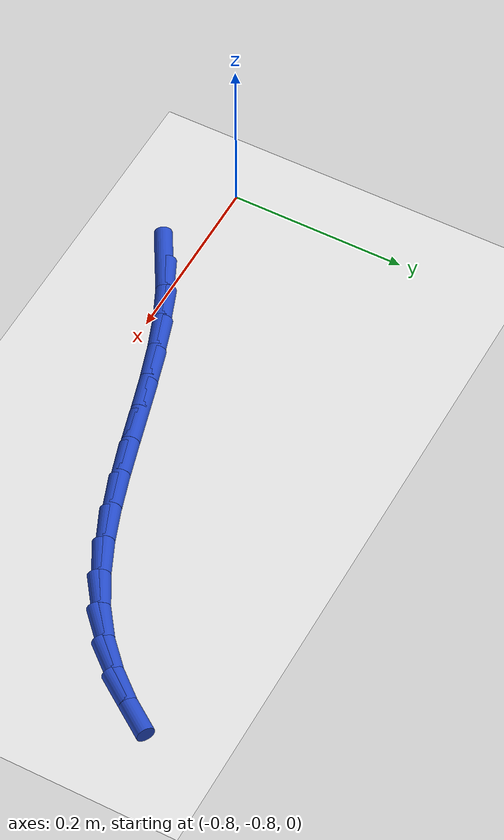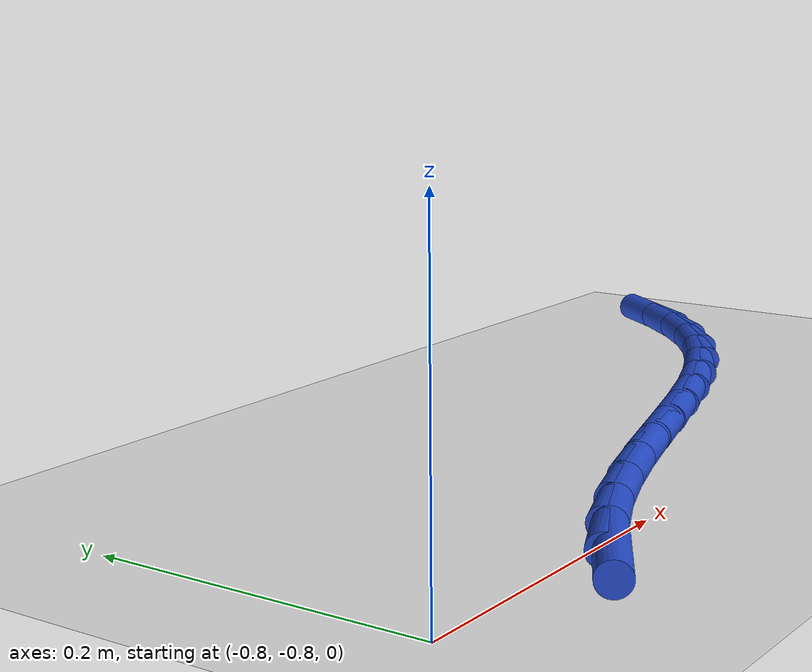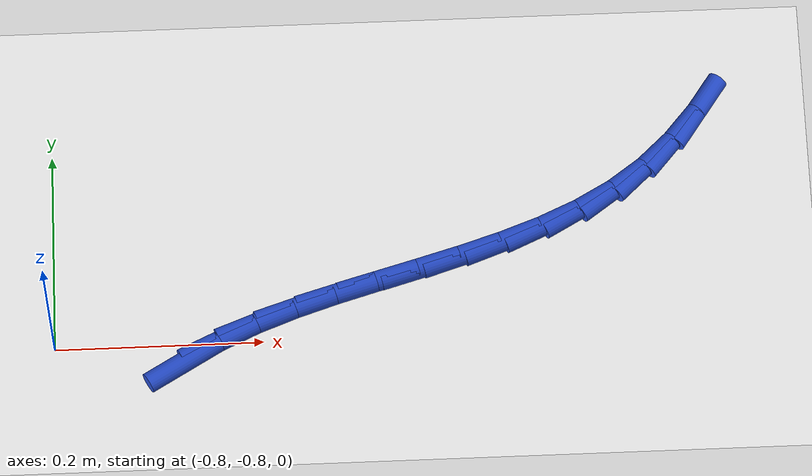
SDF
<sdf version="1.6">
 <world name="default">
  <model name="ground_plane">
   <static>1</static>
   <link name="link">
    <collision name="collision">
     <geometry><plane><normal>0 0 1</normal><size>100 100</size></plane></geometry>
     <surface><friction><ode><mu>100</mu><mu2>50</mu2></ode></friction></surface>
    </collision>
    <visual name="visual">
     <cast_shadows>0</cast_shadows>
     <geometry><plane><normal>0 0 1</normal><size>100 100</size></plane></geometry>
     <material>
      <script><uri>file://media/materials/scripts/gazebo.material</uri><name>Gazebo/WhiteGlow</name></script>
     </material>
    </visual>
   </link>
  </model>
  <model name="line">
   <link name="link_151">
    <pose>-0.6770291355553564 -0.821303218949979 0.01 0 1.57 0.5307839238032793</pose>
    <collision name="collision">
     <geometry><cylinder><radius>0.01</radius><length>0.08</length></cylinder></geometry>
    </collision>
    <visual name="visual">
     <material>
      <script><name>Gazebo/Blue</name><uri>file://media/materials/scripts/gazebo.material</uri></script>
     </material>
     <geometry><cylinder><radius>0.01</radius><length>0.08</length></cylinder></geometry>
    </visual>
   </link>
   <link name="link_152">
    <pose>-0.6430679826048611 -0.80136902264403 0.01 0 1.57 0.4358732601426285</pose>
    <collision name="collision">
     <geometry><cylinder><radius>0.01</radius><length>0.08</length></cylinder></geometry>
    </collision>
    <visual name="visual">
     <material>
      <script><name>Gazebo/Blue</name><uri>file://media/materials/scripts/gazebo.material</uri></script>
     </material>
     <geometry><cylinder><radius>0.01</radius><length>0.08</length></cylinder></geometry>
    </visual>
   </link>
   <link name="link_153">
    <pose>-0.6066791657837312 -0.784420970978457 0.01 0 1.57 0.3645891515962119</pose>
    <collision name="collision">
     <geometry><cylinder><radius>0.01</radius><length>0.08</length></cylinder></geometry>
    </collision>
    <visual name="visual">
     <material>
      <script><name>Gazebo/Blue</name><uri>file://media/materials/scripts/gazebo.material</uri></script>
     </material>
     <geometry><cylinder><radius>0.01</radius><length>0.08</length></cylinder></geometry>
    </visual>
   </link>
   <link name="link_154">
    <pose>-0.5683903887728743 -0.769808009725623 0.01 0 1.57 0.31512306526443534</pose>
    <collision name="collision">
     <geometry><cylinder><radius>0.01</radius><length>0.08</length></cylinder></geometry>
    </collision>
    <visual name="visual">
     <material>
      <script><name>Gazebo/Blue</name><uri>file://media/materials/scripts/gazebo.material</uri></script>
     </material>
     <geometry><cylinder><radius>0.01</radius><length>0.08</length></cylinder></geometry>
    </visual>
   </link>
   <link name="link_155">
    <pose>-0.528729355253201 -0.7568790846578921 0.01 0 1.57 0.28565455775052423</pose>
    <collision name="collision">
     <geometry><cylinder><radius>0.01</radius><length>0.08</length></cylinder></geometry>
    </collision>
    <visual name="visual">
     <material>
      <script><name>Gazebo/Blue</name><uri>file://media/materials/scripts/gazebo.material</uri></script>
     </material>
     <geometry><cylinder><radius>0.01</radius><length>0.08</length></cylinder></geometry>
    </visual>
   </link>
   <link name="link_156">
    <pose>-0.4882237689056193 -0.744983141547628 0.01 0 1.57 0.27490973058277157</pose>
    <collision name="collision">
     <geometry><cylinder><radius>0.01</radius><length>0.08</length></cylinder></geometry>
    </collision>
    <visual name="visual">
     <material>
      <script><name>Gazebo/Blue</name><uri>file://media/materials/scripts/gazebo.material</uri></script>
     </material>
     <geometry><cylinder><radius>0.01</radius><length>0.08</length></cylinder></geometry>
    </visual>
   </link>
   <link name="link_157">
    <pose>-0.44740133341103777 -0.7334691261671936 0.01 0 1.57 0.28238877722590067</pose>
    <collision name="collision">
     <geometry><cylinder><radius>0.01</radius><length>0.08</length></cylinder></geometry>
    </collision>
    <visual name="visual">
     <material>
      <script><name>Gazebo/Blue</name><uri>file://media/materials/scripts/gazebo.material</uri></script>
     </material>
     <geometry><cylinder><radius>0.01</radius><length>0.08</length></cylinder></geometry>
    </visual>
   </link>
   <link name="link_158">
    <pose>-0.4067897524503653 -0.7216859842889528 0.01 0 1.57 0.3084274077650557</pose>
    <collision name="collision">
     <geometry><cylinder><radius>0.01</radius><length>0.08</length></cylinder></geometry>
    </collision>
    <visual name="visual">
     <material>
      <script><name>Gazebo/Blue</name><uri>file://media/materials/scripts/gazebo.material</uri></script>
     </material>
     <geometry><cylinder><radius>0.01</radius><length>0.08</length></cylinder></geometry>
    </visual>
   </link>
   <link name="link_159">
    <pose>-0.36691672970450984 -0.7089826616852687 0.01 0 1.57 0.3541533451405814</pose>
    <collision name="collision">
     <geometry><cylinder><radius>0.01</radius><length>0.08</length></cylinder></geometry>
    </collision>
    <visual name="visual">
     <material>
      <script><name>Gazebo/Blue</name><uri>file://media/materials/scripts/gazebo.material</uri></script>
     </material>
     <geometry><cylinder><radius>0.01</radius><length>0.08</length></cylinder></geometry>
    </visual>
   </link>
   <link name="link_160">
    <pose>-0.3283099688543815 -0.6947081041285053 0.01 0 1.57 0.4212961339807482</pose>
    <collision name="collision">
     <geometry><cylinder><radius>0.01</radius><length>0.08</length></cylinder></geometry>
    </collision>
    <visual name="visual">
     <material>
      <script><name>Gazebo/Blue</name><uri>file://media/materials/scripts/gazebo.material</uri></script>
     </material>
     <geometry><cylinder><radius>0.01</radius><length>0.08</length></cylinder></geometry>
    </visual>
   </link>
   <link name="link_161">
    <pose>-0.29149717358088856 -0.678211257391026 0.01 0 1.57 0.5117049398421613</pose>
    <collision name="collision">
     <geometry><cylinder><radius>0.01</radius><length>0.08</length></cylinder></geometry>
    </collision>
    <visual name="visual">
     <material>
      <script><name>Gazebo/Blue</name><uri>file://media/materials/scripts/gazebo.material</uri></script>
     </material>
     <geometry><cylinder><radius>0.01</radius><length>0.08</length></cylinder></geometry>
    </visual>
   </link>
   <link name="link_162">
    <pose>-0.25700604756493944 -0.658841067245194 0.01 0 1.57 0.6262294350143464</pose>
    <collision name="collision">
     <geometry><cylinder><radius>0.01</radius><length>0.08</length></cylinder></geometry>
    </collision>
    <visual name="visual">
     <material>
      <script><name>Gazebo/Blue</name><uri>file://media/materials/scripts/gazebo.material</uri></script>
     </material>
     <geometry><cylinder><radius>0.01</radius><length>0.08</length></cylinder></geometry>
    </visual>
   </link>
   <link name="link_163">
    <pose>-0.22536141156113607 -0.6359507455415435 0.01 0 1.57 0.751692486046485</pose>
    <collision name="collision">
     <geometry><cylinder><radius>0.01</radius><length>0.08</length></cylinder></geometry>
    </collision>
    <visual name="visual">
     <material>
      <script><name>Gazebo/Blue</name><uri>file://media/materials/scripts/gazebo.material</uri></script>
     </material>
     <geometry><cylinder><radius>0.01</radius><length>0.08</length></cylinder></geometry>
    </visual>
   </link>
   <link name="link_164">
    <pose>-0.19682783401289752 -0.6092786186237694 0.01 0 1.57 0.8644379966040624</pose>
    <collision name="collision">
     <geometry><cylinder><radius>0.01</radius><length>0.08</length></cylinder></geometry>
    </collision>
    <visual name="visual">
     <material>
      <script><name>Gazebo/Blue</name><uri>file://media/materials/scripts/gazebo.material</uri></script>
     </material>
     <geometry><cylinder><radius>0.01</radius><length>0.08</length></cylinder></geometry>
    </visual>
   </link>
   <link name="link_165">
    <pose>-0.17120620434014328 -0.5792491528022503 0.01 0 1.57 0.9614466139224991</pose>
    <collision name="collision">
     <geometry><cylinder><radius>0.01</radius><length>0.08</length></cylinder></geometry>
    </collision>
    <visual name="visual">
     <material>
      <script><name>Gazebo/Blue</name><uri>file://media/materials/scripts/gazebo.material</uri></script>
     </material>
     <geometry><cylinder><radius>0.01</radius><length>0.08</length></cylinder></geometry>
    </visual>
   </link>
  </model>
 </world>
</sdf>
